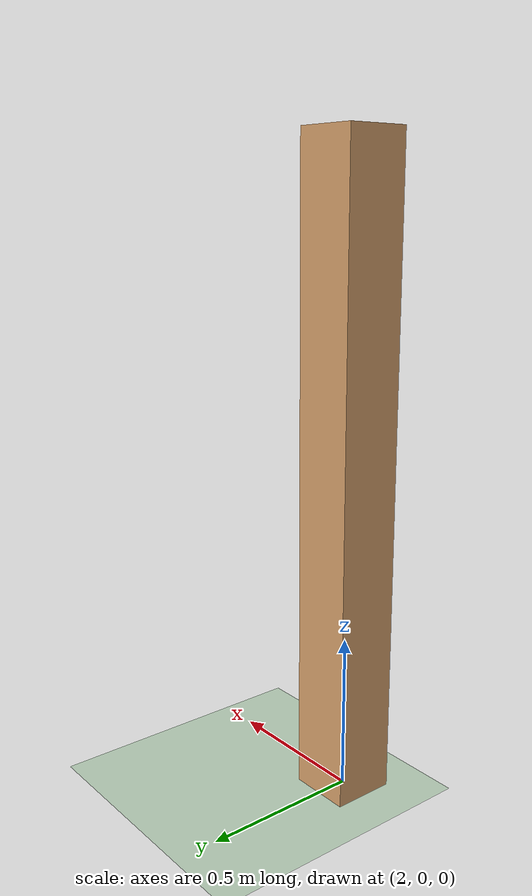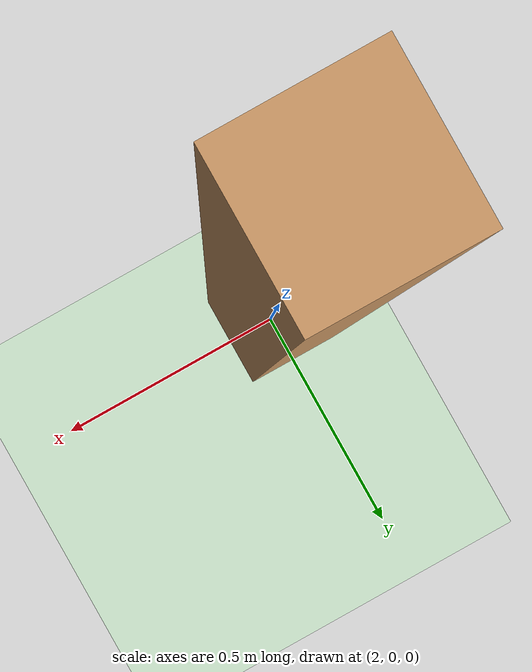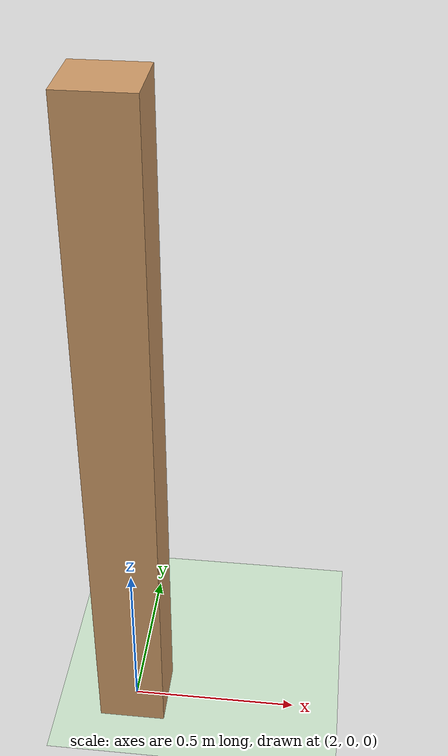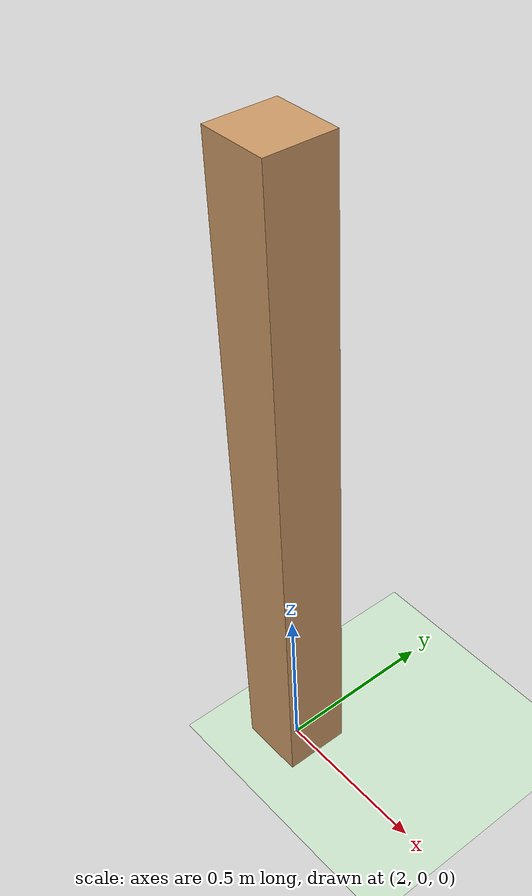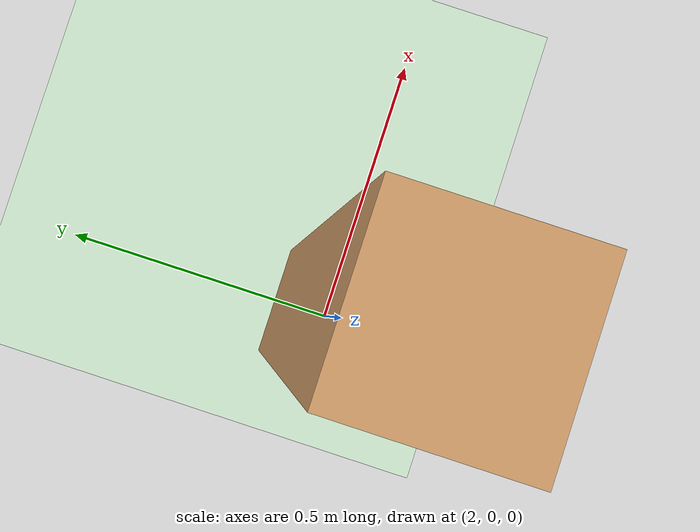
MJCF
<mujoco model="MuJoCo Model">
  <compiler angle="radian" />

  <worldbody>
    <geom name="floor" size="5 5 0.1" type="plane" rgba="0.8 0.9 0.8 1" />
    <body name="column3" pos="2 0 1">
      <joint type="free" limited="false" actuatorfrclimited="false" />
      <geom name="column3" size="0.1 0.1 1" type="box" rgba="0.8 0.6 0.4 1" />
    </body>
    </worldbody>
</mujoco>
